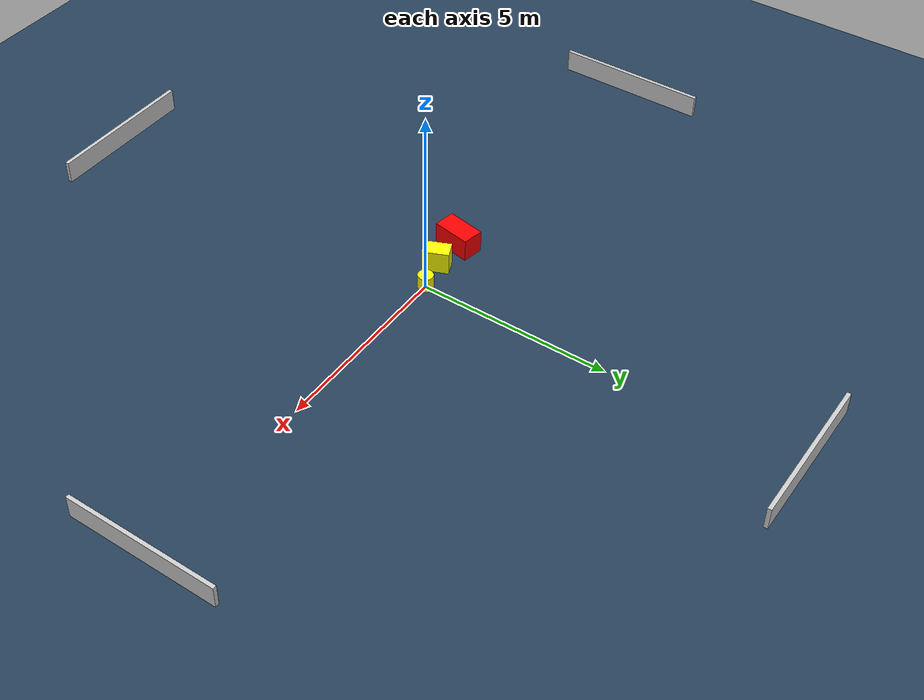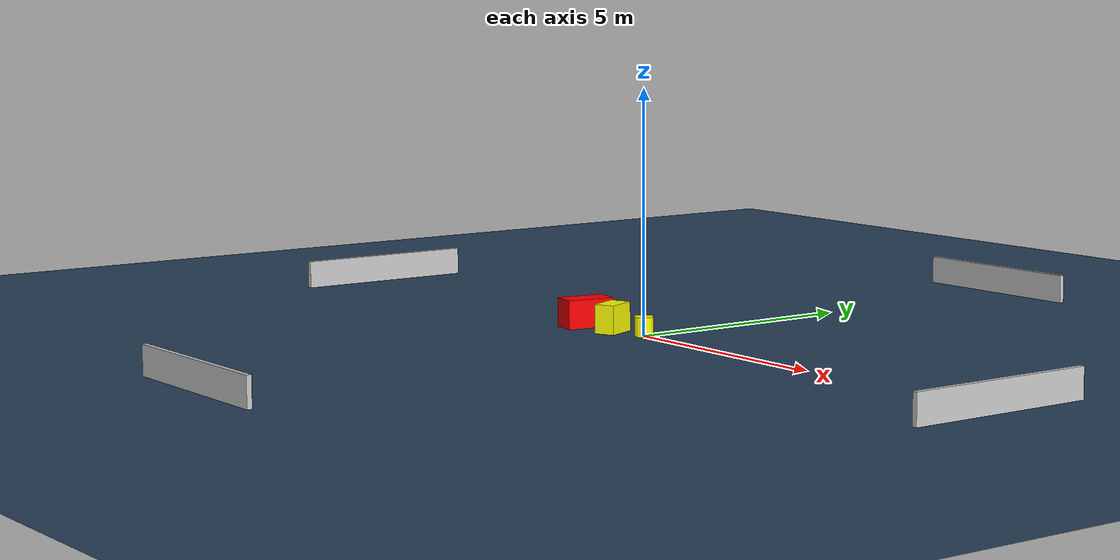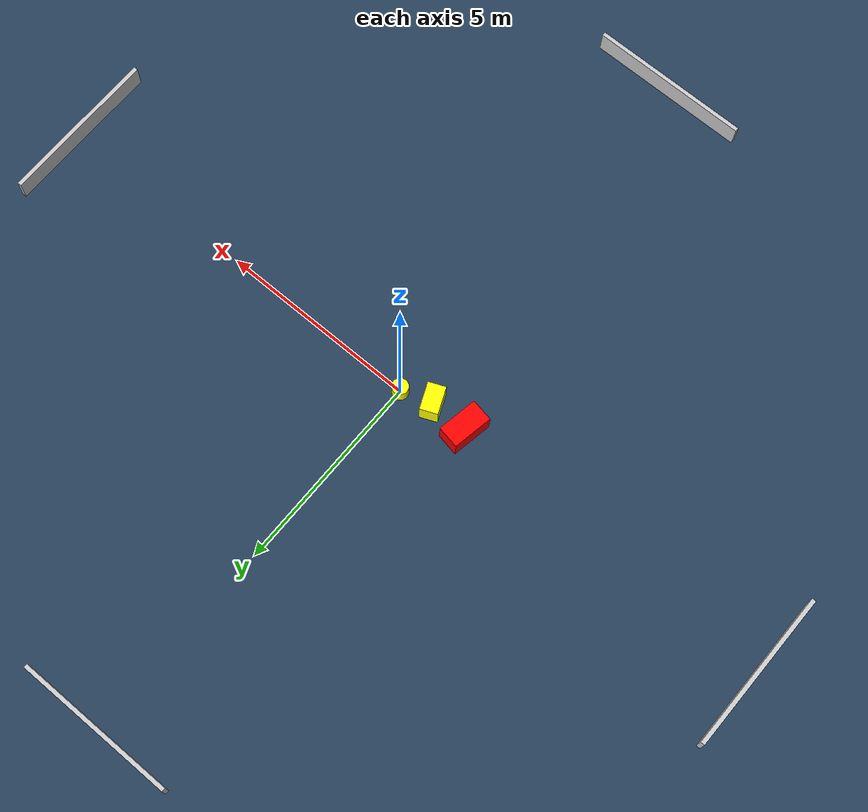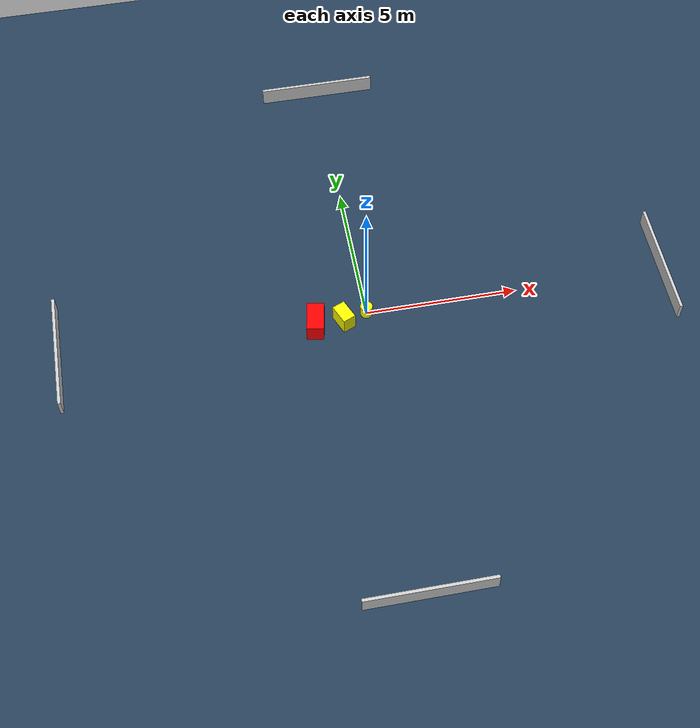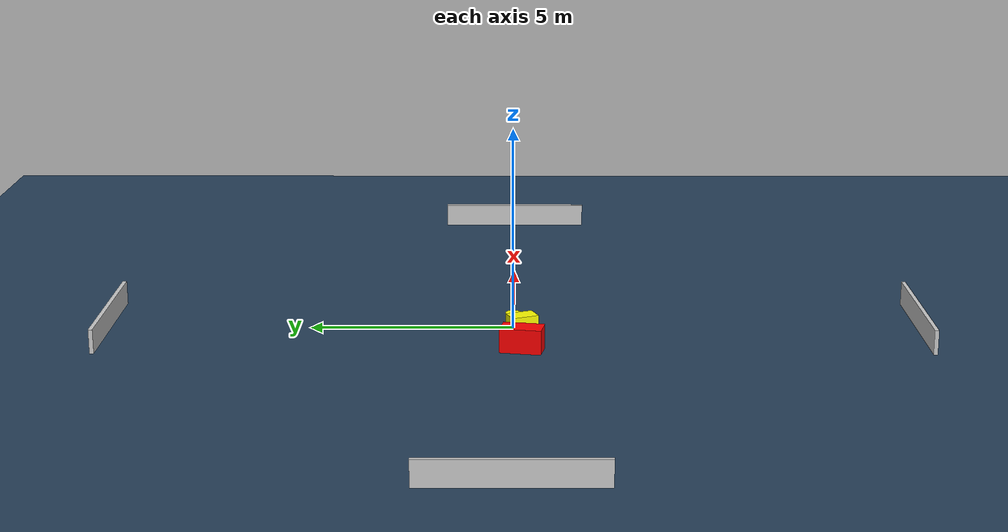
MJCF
<?xml version="1.0" ?>
<mujoco model="generated_environment">
  <option timestep="0.01" integrator="RK4" cone="elliptic"/>
  <default>
    <geom density="1"/>
  </default>
  <asset>
    <texture builtin="gradient" height="3072" name="skybox" rgb1="0.3 0.5 0.7" rgb2="0 0 0" type="skybox" width="512"/>
    <texture builtin="checker" height="300" name="groundplane" rgb1="0.2 0.3 0.4" rgb2="0.1 0.2 0.3" type="2d" width="300"/>
    <material name="groundplane" reflectance="0.2" texrepeat="5 5" texture="groundplane"/>
  </asset>
  <worldbody>
    <light dir="0 0 -1" directional="true" pos="0 0 1.5"/>
    <geom condim="3" friction="0.5 0.005 0.001" material="groundplane" name="floor" pos="0 0 0" size="0 0 0.05" type="plane"/>
    <body name="walls">
      <geom name="wall_1" condim="4" pos="-10.0 0.0 0.3" rgba="0.800000011920929 0.800000011920929 0.800000011920929 1.0" size="0.05 2.0 0.3" type="box"/>
      <geom name="wall_2" condim="4" pos="10.0 0.0 0.3" rgba="0.800000011920929 0.800000011920929 0.800000011920929 1.0" size="0.05 2.0 0.3" type="box"/>
      <geom name="wall_3" condim="4" pos="0.0 -10.0 0.3" rgba="0.800000011920929 0.800000011920929 0.800000011920929 1.0" size="2.0 0.05 0.3" type="box"/>
      <geom name="wall_4" condim="4" pos="0.0 10.0 0.3" rgba="0.800000011920929 0.800000011920929 0.800000011920929 1.0" size="2.0 0.05 0.3" type="box"/>
    </body>
    <body name="robot">
      <joint name="joint_x" type="slide" pos="0 0 0" axis="1 0 0"/>
      <joint name="joint_y" type="slide" pos="0 0 0" axis="0 1 0"/>
      <geom name="robot" type="cylinder" pos="0.0 0.0 0.2" size="0.2 0.2 0.0" mass="5.0" friction="1.0 0.005 0.0001" condim="4" rgba="1.0 1.0 0.0 1.0"/>
    </body>
    <body name="obstacle_1_movable">
      <geom name="obstacle_1_movable" condim="4" pos="-0.7791178445082605 -0.21219619013541724 0.3" euler="0 0 23.151503584649767" friction="0.0 0.005 0.001" rgba="1.0 1.0 0.0 1.0" size="0.21900232152121452 0.3397011017197108 0.3" type="box" mass="0.1"/>
      <joint type="free"/>
    </body>
    <body name="obstacle_2_static">
      <geom name="obstacle_2_static" condim="4" pos="-1.7135635600062231 -0.21020647368279308 0.3" euler="0 0 349.77074626910127" friction="0.0 0.005 0.001" rgba="1.0 0.0 0.0 1.0" size="0.2776726825311713 0.502887645638356 0.3" type="box"/>
    </body>
  </worldbody>
  <actuator>
    <motor name="actuator_x" joint="joint_x" gear="1" ctrlrange="-1 1"/>
    <motor name="actuator_y" joint="joint_y" gear="1" ctrlrange="-1 1"/>
  </actuator>
</mujoco>
